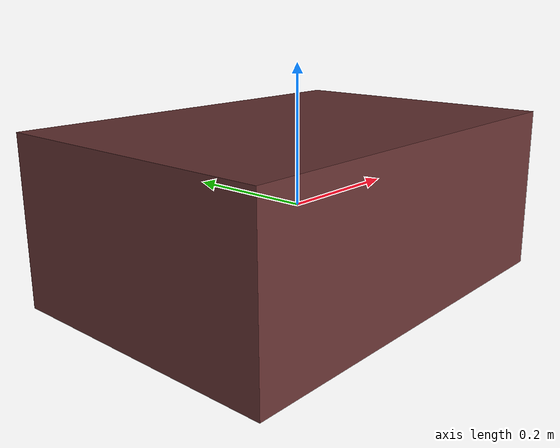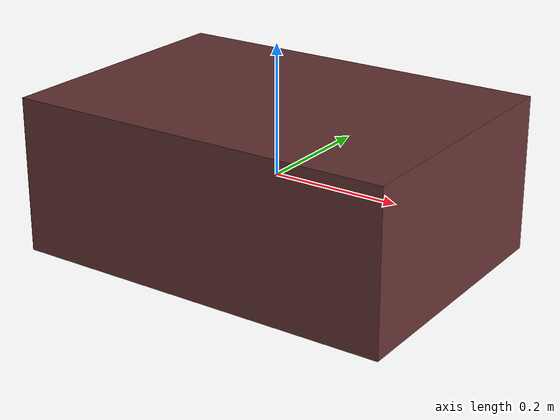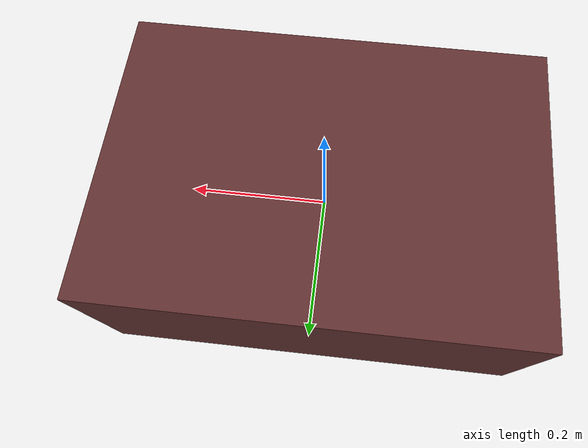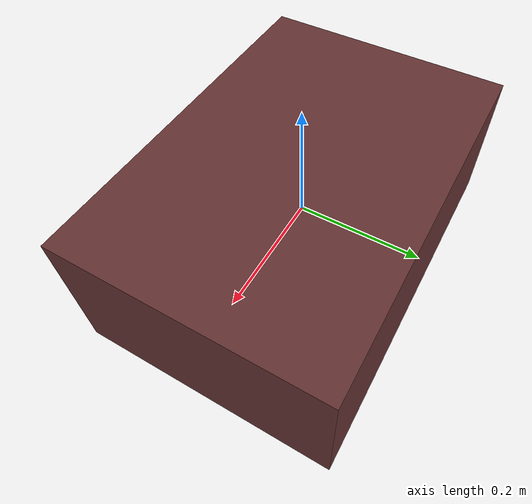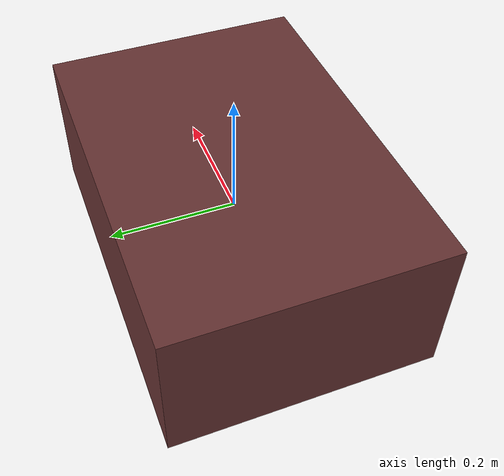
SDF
<?xml version="1.0" ?>
<sdf version="1.7">
  <model name="torso">
    <static>false</static>

    <link name="torso">
      <inertial>
        <mass>10.0</mass>
        <inertia>
          <ixx>0.1</ixx><ixy>0</ixy><ixz>0</ixz>
          <iyy>0.1</iyy><iyz>0</iyz>
          <izz>0.1</izz>
        </inertia>
      </inertial>

      <!-- Torso visual -->
      <visual name="torso_vis">
        <geometry>
          <box>
            <size>0.60 0.42 0.24</size>
          </box>
        </geometry>
        <material><diffuse>0.4 0.2 0.2 1</diffuse></material>
      </visual>

      <collision name="torso_col">
        <geometry>
          <box>
            <size>0.60 0.42 0.24</size>
          </box>
        </geometry>
      </collision>
    </link>
  </model>
</sdf>
